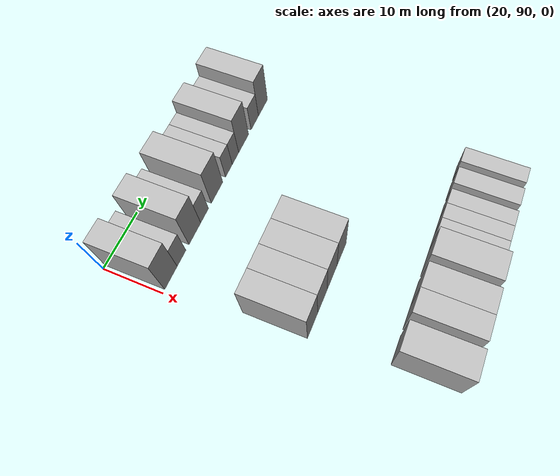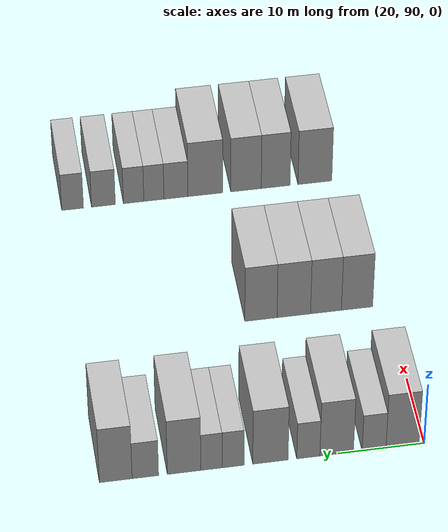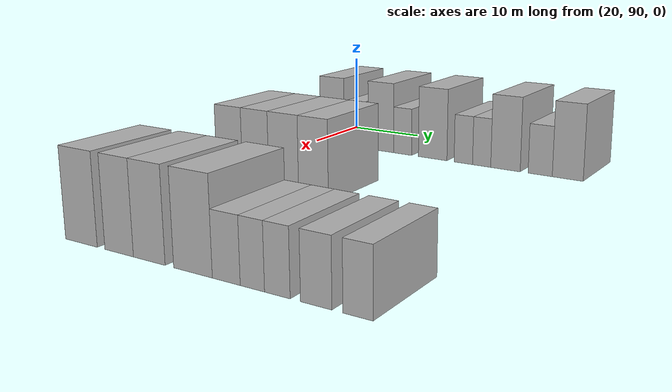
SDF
<sdf version="1.6">
 <world name="default">
  <model name="building_82">
   <static>1</static>
   <pose>25.0000 92.5254 0 0.000000 0.000000 0.000000</pose>
   <link name="link">
    <pose>0 0 4.50 0 0 0</pose>
    <collision name="collision"><geometry><box><size>10.0000 3.8368 9.0000</size></box></geometry></collision>
    <visual name="visual">
     <cast_shadows>0</cast_shadows>
     <geometry><box><size>10.0000 3.8368 9.0000</size></box></geometry>
     <material>
      <script>
       <uri>model://HANNAS_wall/materials/scripts</uri>
       <uri>model://HANNAS_wall/materials/textures</uri>
       <name>vrc/HANNAS_wall</name>
      </script>
     </material>
    </visual>
   </link>
  </model>
  <model name="building_83">
   <static>1</static>
   <pose>25.0000 95.8199 0 0.000000 0.000000 0.000000</pose>
   <link name="link">
    <pose>0 0 3.00 0 0 0</pose>
    <collision name="collision"><geometry><box><size>10.0000 2.7521 6.0000</size></box></geometry></collision>
    <visual name="visual">
     <cast_shadows>0</cast_shadows>
     <geometry><box><size>10.0000 2.7521 6.0000</size></box></geometry>
     <material>
      <script>
       <uri>model://HANNAS_wall/materials/scripts</uri>
       <uri>model://HANNAS_wall/materials/textures</uri>
       <name>vrc/HANNAS_wall</name>
      </script>
     </material>
    </visual>
   </link>
  </model>
  <model name="building_84">
   <static>1</static>
   <pose>25.0000 100.1301 0 0.000000 0.000000 0.000000</pose>
   <link name="link">
    <pose>0 0 4.50 0 0 0</pose>
    <collision name="collision"><geometry><box><size>10.0000 3.8682 9.0000</size></box></geometry></collision>
    <visual name="visual">
     <cast_shadows>0</cast_shadows>
     <geometry><box><size>10.0000 3.8682 9.0000</size></box></geometry>
     <material>
      <script>
       <uri>model://HANNAS_wall/materials/scripts</uri>
       <uri>model://HANNAS_wall/materials/textures</uri>
       <name>vrc/HANNAS_wall</name>
      </script>
     </material>
    </visual>
   </link>
  </model>
  <model name="building_85">
   <static>1</static>
   <pose>25.0000 103.3942 0 0.000000 0.000000 0.000000</pose>
   <link name="link">
    <pose>0 0 3.00 0 0 0</pose>
    <collision name="collision"><geometry><box><size>10.0000 2.6601 6.0000</size></box></geometry></collision>
    <visual name="visual">
     <cast_shadows>0</cast_shadows>
     <geometry><box><size>10.0000 2.6601 6.0000</size></box></geometry>
     <material>
      <script>
       <uri>model://HANNAS_wall/materials/scripts</uri>
       <uri>model://HANNAS_wall/materials/textures</uri>
       <name>vrc/HANNAS_wall</name>
      </script>
     </material>
    </visual>
   </link>
  </model>
  <model name="building_86">
   <static>1</static>
   <pose>25.0000 107.7466 0 0.000000 0.000000 0.000000</pose>
   <link name="link">
    <pose>0 0 4.50 0 0 0</pose>
    <collision name="collision"><geometry><box><size>10.0000 4.0449 9.0000</size></box></geometry></collision>
    <visual name="visual">
     <cast_shadows>0</cast_shadows>
     <geometry><box><size>10.0000 4.0449 9.0000</size></box></geometry>
     <material>
      <script>
       <uri>model://HANNAS_wall/materials/scripts</uri>
       <uri>model://HANNAS_wall/materials/textures</uri>
       <name>vrc/HANNAS_wall</name>
      </script>
     </material>
    </visual>
   </link>
  </model>
  <model name="building_87">
   <static>1</static>
   <pose>25.0000 112.0256 0 0.000000 0.000000 0.000000</pose>
   <link name="link">
    <pose>0 0 3.00 0 0 0</pose>
    <collision name="collision"><geometry><box><size>10.0000 2.5132 6.0000</size></box></geometry></collision>
    <visual name="visual">
     <cast_shadows>0</cast_shadows>
     <geometry><box><size>10.0000 2.5132 6.0000</size></box></geometry>
     <material>
      <script>
       <uri>model://HANNAS_wall/materials/scripts</uri>
       <uri>model://HANNAS_wall/materials/textures</uri>
       <name>vrc/HANNAS_wall</name>
      </script>
     </material>
    </visual>
   </link>
  </model>
  <model name="building_88">
   <static>1</static>
   <pose>25.0000 114.4950 0 0.000000 0.000000 0.000000</pose>
   <link name="link">
    <pose>0 0 3.00 0 0 0</pose>
    <collision name="collision"><geometry><box><size>10.0000 2.4255 6.0000</size></box></geometry></collision>
    <visual name="visual">
     <cast_shadows>0</cast_shadows>
     <geometry><box><size>10.0000 2.4255 6.0000</size></box></geometry>
     <material>
      <script>
       <uri>model://HANNAS_wall/materials/scripts</uri>
       <uri>model://HANNAS_wall/materials/textures</uri>
       <name>vrc/HANNAS_wall</name>
      </script>
     </material>
    </visual>
   </link>
  </model>
  <model name="building_89">
   <static>1</static>
   <pose>25.0000 117.6161 0 0.000000 0.000000 0.000000</pose>
   <link name="link">
    <pose>0 0 4.50 0 0 0</pose>
    <collision name="collision"><geometry><box><size>10.0000 3.8167 9.0000</size></box></geometry></collision>
    <visual name="visual">
     <cast_shadows>0</cast_shadows>
     <geometry><box><size>10.0000 3.8167 9.0000</size></box></geometry>
     <material>
      <script>
       <uri>model://HANNAS_wall/materials/scripts</uri>
       <uri>model://HANNAS_wall/materials/textures</uri>
       <name>vrc/HANNAS_wall</name>
      </script>
     </material>
    </visual>
   </link>
  </model>
  <model name="building_90">
   <static>1</static>
   <pose>25.0000 122.0232 0 0.000000 0.000000 0.000000</pose>
   <link name="link">
    <pose>0 0 3.00 0 0 0</pose>
    <collision name="collision"><geometry><box><size>10.0000 2.9976 6.0000</size></box></geometry></collision>
    <visual name="visual">
     <cast_shadows>0</cast_shadows>
     <geometry><box><size>10.0000 2.9976 6.0000</size></box></geometry>
     <material>
      <script>
       <uri>model://HANNAS_wall/materials/scripts</uri>
       <uri>model://HANNAS_wall/materials/textures</uri>
       <name>vrc/HANNAS_wall</name>
      </script>
     </material>
    </visual>
   </link>
  </model>
  <model name="building_91">
   <static>1</static>
   <pose>25.0000 125.3807 0 0.000000 0.000000 0.000000</pose>
   <link name="link">
    <pose>0 0 4.50 0 0 0</pose>
    <collision name="collision"><geometry><box><size>10.0000 3.7174 9.0000</size></box></geometry></collision>
    <visual name="visual">
     <cast_shadows>0</cast_shadows>
     <geometry><box><size>10.0000 3.7174 9.0000</size></box></geometry>
     <material>
      <script>
       <uri>model://HANNAS_wall/materials/scripts</uri>
       <uri>model://HANNAS_wall/materials/textures</uri>
       <name>vrc/HANNAS_wall</name>
      </script>
     </material>
    </visual>
   </link>
  </model>
  <model name="building_203">
   <static>1</static>
   <pose>47.0000 93.6079 0 0.000000 0.000000 0.000000</pose>
   <link name="link">
    <pose>0 0 4.50 0 0 0</pose>
    <collision name="collision"><geometry><box><size>10.0000 3.7756 9.0000</size></box></geometry></collision>
    <visual name="visual">
     <cast_shadows>0</cast_shadows>
     <geometry><box><size>10.0000 3.7756 9.0000</size></box></geometry>
     <material>
      <script>
       <uri>model://HANNAS_wall/materials/scripts</uri>
       <uri>model://HANNAS_wall/materials/textures</uri>
       <name>vrc/HANNAS_wall</name>
      </script>
     </material>
    </visual>
   </link>
  </model>
  <model name="building_204">
   <static>1</static>
   <pose>47.0000 97.3581 0 0.000000 0.000000 0.000000</pose>
   <link name="link">
    <pose>0 0 4.50 0 0 0</pose>
    <collision name="collision"><geometry><box><size>10.0000 3.7249 9.0000</size></box></geometry></collision>
    <visual name="visual">
     <cast_shadows>0</cast_shadows>
     <geometry><box><size>10.0000 3.7249 9.0000</size></box></geometry>
     <material>
      <script>
       <uri>model://HANNAS_wall/materials/scripts</uri>
       <uri>model://HANNAS_wall/materials/textures</uri>
       <name>vrc/HANNAS_wall</name>
      </script>
     </material>
    </visual>
   </link>
  </model>
  <model name="building_205">
   <static>1</static>
   <pose>47.0000 101.2338 0 0.000000 0.000000 0.000000</pose>
   <link name="link">
    <pose>0 0 4.50 0 0 0</pose>
    <collision name="collision"><geometry><box><size>10.0000 4.0266 9.0000</size></box></geometry></collision>
    <visual name="visual">
     <cast_shadows>0</cast_shadows>
     <geometry><box><size>10.0000 4.0266 9.0000</size></box></geometry>
     <material>
      <script>
       <uri>model://HANNAS_wall/materials/scripts</uri>
       <uri>model://HANNAS_wall/materials/textures</uri>
       <name>vrc/HANNAS_wall</name>
      </script>
     </material>
    </visual>
   </link>
  </model>
  <model name="building_206">
   <static>1</static>
   <pose>47.0000 105.1846 0 0.000000 0.000000 0.000000</pose>
   <link name="link">
    <pose>0 0 4.50 0 0 0</pose>
    <collision name="collision"><geometry><box><size>10.0000 3.8750 9.0000</size></box></geometry></collision>
    <visual name="visual">
     <cast_shadows>0</cast_shadows>
     <geometry><box><size>10.0000 3.8750 9.0000</size></box></geometry>
     <material>
      <script>
       <uri>model://HANNAS_wall/materials/scripts</uri>
       <uri>model://HANNAS_wall/materials/textures</uri>
       <name>vrc/HANNAS_wall</name>
      </script>
     </material>
    </visual>
   </link>
  </model>
  <model name="building_323">
   <static>1</static>
   <pose>69.0000 94.7603 0 0.000000 0.000000 0.000000</pose>
   <link name="link">
    <pose>0 0 4.50 0 0 0</pose>
    <collision name="collision"><geometry><box><size>10.0000 4.2610 9.0000</size></box></geometry></collision>
    <visual name="visual">
     <cast_shadows>0</cast_shadows>
     <geometry><box><size>10.0000 4.2610 9.0000</size></box></geometry>
     <material>
      <script>
       <uri>model://HANNAS_wall/materials/scripts</uri>
       <uri>model://HANNAS_wall/materials/textures</uri>
       <name>vrc/HANNAS_wall</name>
      </script>
     </material>
    </visual>
   </link>
  </model>
  <model name="building_324">
   <static>1</static>
   <pose>69.0000 99.6965 0 0.000000 0.000000 0.000000</pose>
   <link name="link">
    <pose>0 0 4.50 0 0 0</pose>
    <collision name="collision"><geometry><box><size>10.0000 3.6114 9.0000</size></box></geometry></collision>
    <visual name="visual">
     <cast_shadows>0</cast_shadows>
     <geometry><box><size>10.0000 3.6114 9.0000</size></box></geometry>
     <material>
      <script>
       <uri>model://HANNAS_wall/materials/scripts</uri>
       <uri>model://HANNAS_wall/materials/textures</uri>
       <name>vrc/HANNAS_wall</name>
      </script>
     </material>
    </visual>
   </link>
  </model>
  <model name="building_325">
   <static>1</static>
   <pose>69.0000 103.4180 0 0.000000 0.000000 0.000000</pose>
   <link name="link">
    <pose>0 0 4.50 0 0 0</pose>
    <collision name="collision"><geometry><box><size>10.0000 3.8316 9.0000</size></box></geometry></collision>
    <visual name="visual">
     <cast_shadows>0</cast_shadows>
     <geometry><box><size>10.0000 3.8316 9.0000</size></box></geometry>
     <material>
      <script>
       <uri>model://HANNAS_wall/materials/scripts</uri>
       <uri>model://HANNAS_wall/materials/textures</uri>
       <name>vrc/HANNAS_wall</name>
      </script>
     </material>
    </visual>
   </link>
  </model>
  <model name="building_326">
   <static>1</static>
   <pose>69.0000 108.5151 0 0.000000 0.000000 0.000000</pose>
   <link name="link">
    <pose>0 0 4.50 0 0 0</pose>
    <collision name="collision"><geometry><box><size>10.0000 4.3626 9.0000</size></box></geometry></collision>
    <visual name="visual">
     <cast_shadows>0</cast_shadows>
     <geometry><box><size>10.0000 4.3626 9.0000</size></box></geometry>
     <material>
      <script>
       <uri>model://HANNAS_wall/materials/scripts</uri>
       <uri>model://HANNAS_wall/materials/textures</uri>
       <name>vrc/HANNAS_wall</name>
      </script>
     </material>
    </visual>
   </link>
  </model>
  <model name="building_327">
   <static>1</static>
   <pose>69.0000 112.1928 0 0.000000 0.000000 0.000000</pose>
   <link name="link">
    <pose>0 0 3.00 0 0 0</pose>
    <collision name="collision"><geometry><box><size>10.0000 2.9928 6.0000</size></box></geometry></collision>
    <visual name="visual">
     <cast_shadows>0</cast_shadows>
     <geometry><box><size>10.0000 2.9928 6.0000</size></box></geometry>
     <material>
      <script>
       <uri>model://HANNAS_wall/materials/scripts</uri>
       <uri>model://HANNAS_wall/materials/textures</uri>
       <name>vrc/HANNAS_wall</name>
      </script>
     </material>
    </visual>
   </link>
  </model>
  <model name="building_328">
   <static>1</static>
   <pose>69.0000 114.9421 0 0.000000 0.000000 0.000000</pose>
   <link name="link">
    <pose>0 0 3.00 0 0 0</pose>
    <collision name="collision"><geometry><box><size>10.0000 2.5058 6.0000</size></box></geometry></collision>
    <visual name="visual">
     <cast_shadows>0</cast_shadows>
     <geometry><box><size>10.0000 2.5058 6.0000</size></box></geometry>
     <material>
      <script>
       <uri>model://HANNAS_wall/materials/scripts</uri>
       <uri>model://HANNAS_wall/materials/textures</uri>
       <name>vrc/HANNAS_wall</name>
      </script>
     </material>
    </visual>
   </link>
  </model>
  <model name="building_329">
   <static>1</static>
   <pose>69.0000 117.4680 0 0.000000 0.000000 0.000000</pose>
   <link name="link">
    <pose>0 0 3.00 0 0 0</pose>
    <collision name="collision"><geometry><box><size>10.0000 2.5460 6.0000</size></box></geometry></collision>
    <visual name="visual">
     <cast_shadows>0</cast_shadows>
     <geometry><box><size>10.0000 2.5460 6.0000</size></box></geometry>
     <material>
      <script>
       <uri>model://HANNAS_wall/materials/scripts</uri>
       <uri>model://HANNAS_wall/materials/textures</uri>
       <name>vrc/HANNAS_wall</name>
      </script>
     </material>
    </visual>
   </link>
  </model>
  <model name="building_330">
   <static>1</static>
   <pose>69.0000 121.2208 0 0.000000 0.000000 0.000000</pose>
   <link name="link">
    <pose>0 0 3.00 0 0 0</pose>
    <collision name="collision"><geometry><box><size>10.0000 2.9595 6.0000</size></box></geometry></collision>
    <visual name="visual">
     <cast_shadows>0</cast_shadows>
     <geometry><box><size>10.0000 2.9595 6.0000</size></box></geometry>
     <material>
      <script>
       <uri>model://HANNAS_wall/materials/scripts</uri>
       <uri>model://HANNAS_wall/materials/textures</uri>
       <name>vrc/HANNAS_wall</name>
      </script>
     </material>
    </visual>
   </link>
  </model>
  <model name="building_331">
   <static>1</static>
   <pose>69.0000 125.0482 0 0.000000 0.000000 0.000000</pose>
   <link name="link">
    <pose>0 0 3.00 0 0 0</pose>
    <collision name="collision"><geometry><box><size>10.0000 2.6954 6.0000</size></box></geometry></collision>
    <visual name="visual">
     <cast_shadows>0</cast_shadows>
     <geometry><box><size>10.0000 2.6954 6.0000</size></box></geometry>
     <material>
      <script>
       <uri>model://HANNAS_wall/materials/scripts</uri>
       <uri>model://HANNAS_wall/materials/textures</uri>
       <name>vrc/HANNAS_wall</name>
      </script>
     </material>
    </visual>
   </link>
  </model>
 </world>
</sdf>
